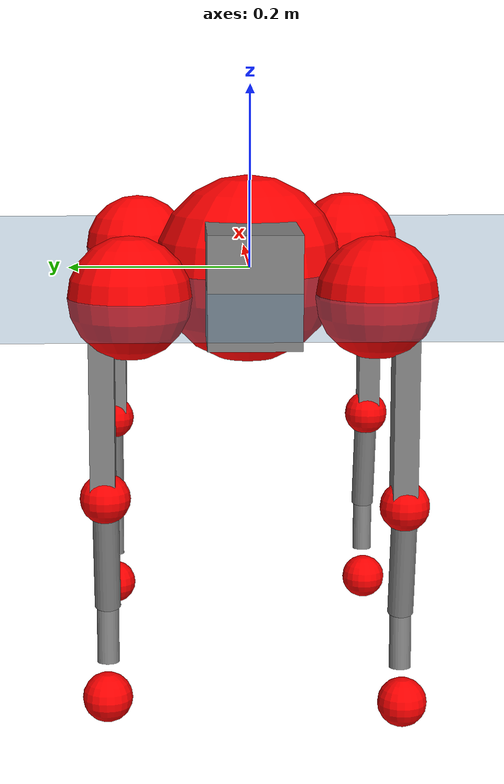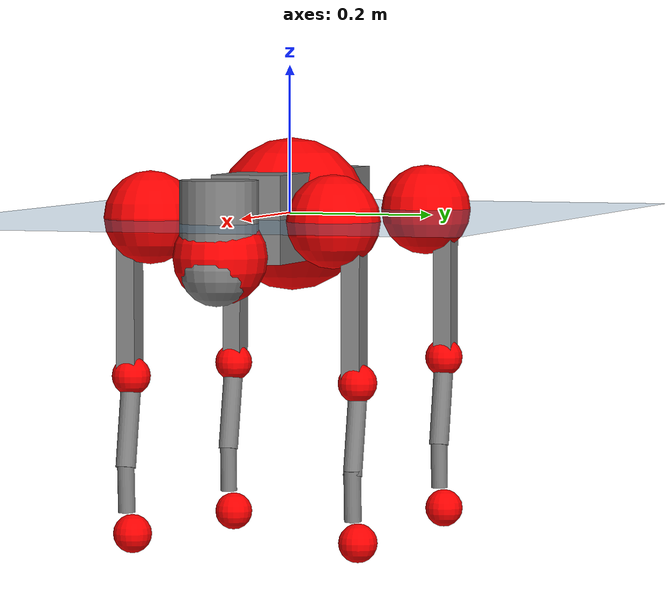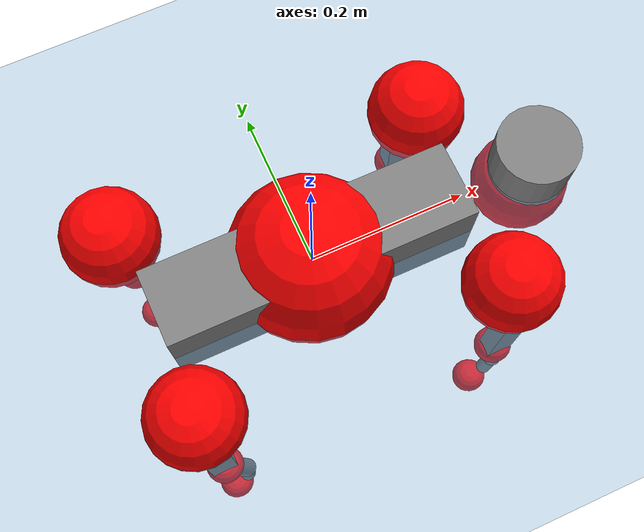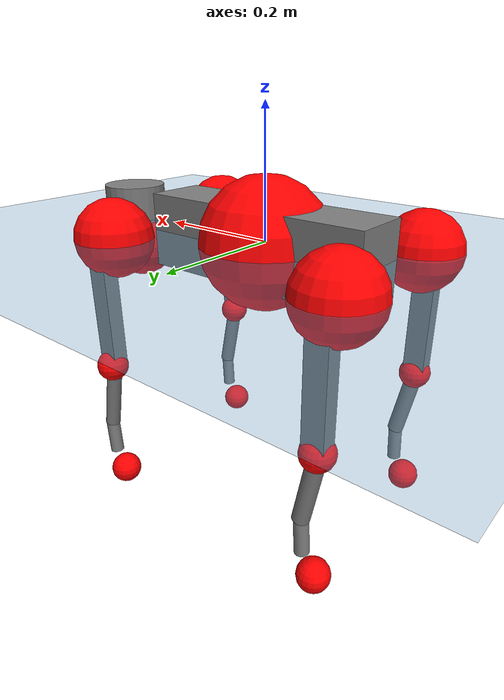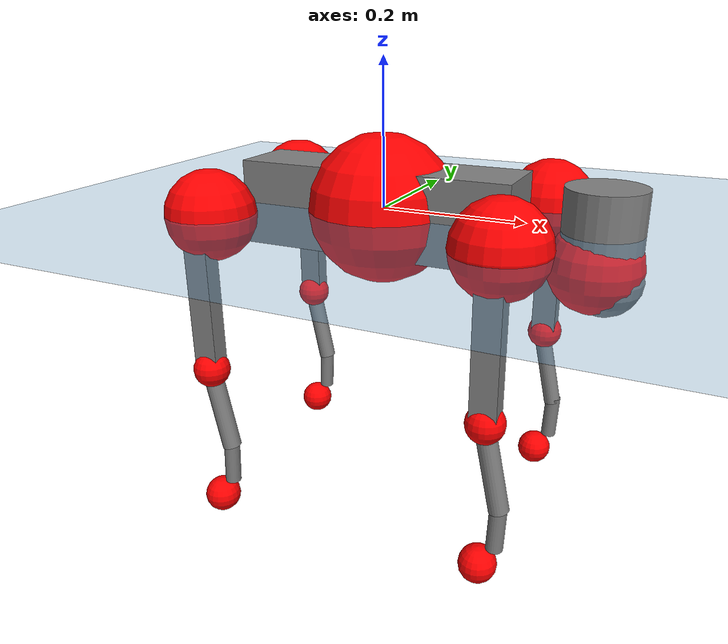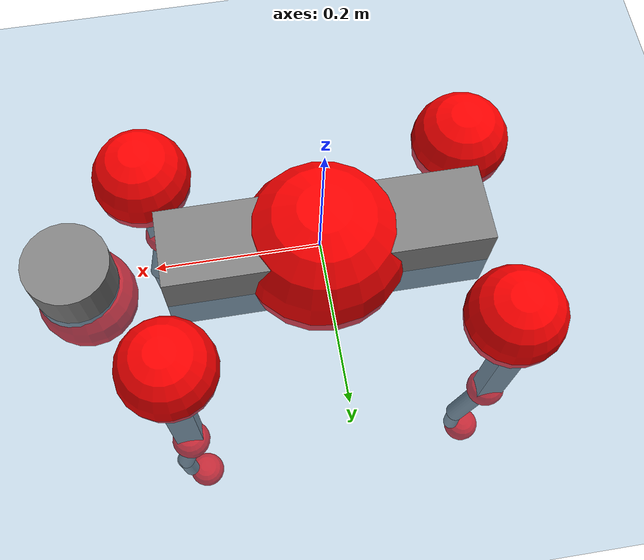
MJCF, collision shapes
<mujoco model="go2">
  <compiler angle="radian" assetdir="assets" balanceinertia="true" inertiafromgeom="false"/>

  <option timestep="0.005" density="1.2" viscosity="2e-05"/>

  <size nkey="1"/>

  <visual>
    <quality shadowsize="8192"/>
    <map shadowclip="0.5"/>
  </visual>

  <default>
    <default class="/">
      <geom contype="0" conaffinity="0" group="1" solref="-1000 -80"/>
      <site size="0.01 0.005 0.005" group="5"/>
      <general forcelimited="true" biastype="affine" gainprm="20" biasprm="0 -20 -0.5"/>
      <default class="go2">
        <joint armature="0.01" damping="0.01" frictionloss="0.2"/>
        <geom condim="1" margin="0.001"/>
        <default class="visual">
          <geom type="mesh" group="2"/>
        </default>
        <default class="collision">
          <geom group="3"/>
          <default class="foot">
            <geom size="0.022 0 0" condim="6" priority="1" friction="0.8 0.02 0.01" solimp="0.015 1 0.022"/>
          </default>
        </default>
        <default class="reward_collision_sphere">
          <geom group="5" rgba="1 0 0 1"/>
        </default>
      </default>
    </default>
  </default>

  <asset>
    <texture type="skybox" colorspace="auto" name="//unnamed_texture_0" builtin="gradient" rgb1="0.95 0.95 0.95" rgb2="0.95 0.95 0.95" width="100" height="600"/>
    <texture type="2d" colorspace="auto" name="texplane" builtin="checker" rgb1="0.345 0.575 0.748" rgb2="0.345 0.575 0.748" markrgb="1 1 1" width="512" height="512"/>
    <material name="MatPlane" class="/" texture="texplane" texuniform="true" texrepeat="2 2" specular="0.9"/>
    <material name="metal" class="/" rgba="0.9 0.95 0.95 1"/>
    <material name="black" class="/" rgba="0 0 0 1"/>
    <material name="white" class="/"/>
    <material name="gray" class="/" rgba="0.671705 0.692426 0.77427 1"/>
    <mesh name="base_0" class="/" file="base_0.obj"/>
    <mesh name="base_1" class="/" file="base_1.obj"/>
    <mesh name="base_2" class="/" file="base_2.obj"/>
    <mesh name="base_3" class="/" file="base_3.obj"/>
    <mesh name="base_4" class="/" file="base_4.obj"/>
    <mesh name="hip_0" class="/" file="hip_0.obj"/>
    <mesh name="hip_1" class="/" file="hip_1.obj"/>
    <mesh name="thigh_0" class="/" file="thigh_0.obj"/>
    <mesh name="thigh_1" class="/" file="thigh_1.obj"/>
    <mesh name="thigh_mirror_0" class="/" file="thigh_mirror_0.obj"/>
    <mesh name="thigh_mirror_1" class="/" file="thigh_mirror_1.obj"/>
    <mesh name="calf_0" class="/" file="calf_0.obj"/>
    <mesh name="calf_1" class="/" file="calf_1.obj"/>
    <mesh name="calf_mirror_0" class="/" file="calf_mirror_0.obj"/>
    <mesh name="calf_mirror_1" class="/" file="calf_mirror_1.obj"/>
    <mesh name="foot" class="/" file="foot.obj"/>
  </asset>

  <worldbody>
    <geom name="floor" class="/" size="100 100 0.125" type="plane" group="0" material="MatPlane"/>
    <light name="toplight_shadow" class="/" pos="0 0 5" dir="0.0990148 0.0990148 -0.990148" type="directional" ambient="0.04 0.04 0.04" diffuse="0.55 0.55 0.55" specular="0.12 0.12 0.12"/>
    <light name="toplight_fill" class="/" pos="0 0 5" dir="0.0990148 0.0990148 -0.990148" type="directional" castshadow="false" ambient="0.04 0.04 0.04" diffuse="0.3 0.3 0.3" specular="0.08 0.08 0.08"/>
    <body name="trunk" childclass="go2" pos="-0.00275413 0.00210807 -0.000978885" quat="0.999999 0.00012523 0.000139148 0.00124201">
      <inertial pos="0.022577 -0.00153115 -0.00544077" quat="-0.00502591 0.715044 0.000708854 0.699061" mass="7.85362" diaginertia="0.130441 0.129818 0.022835"/>
      <joint name="//unnamed_joint_0" type="free" armature="0" damping="0" frictionloss="0"/>
      <geom name="//unnamed_geom_1" class="visual" material="black" mesh="base_0"/>
      <geom name="//unnamed_geom_2" class="visual" material="black" mesh="base_1"/>
      <geom name="//unnamed_geom_3" class="visual" material="black" mesh="base_2"/>
      <geom name="//unnamed_geom_4" class="visual" material="white" mesh="base_3"/>
      <geom name="//unnamed_geom_5" class="visual" material="gray" mesh="base_4"/>
      <geom name="trunk_1" class="collision" size="0.194566 0.048357 0.0589593" type="box"/>
      <geom name="trunk_2" class="collision" size="0.0517187 0.0465468" pos="0.300007 0 0.00988465" type="cylinder"/>
      <geom name="trunk_3" class="collision" size="0.0486155" pos="0.308428 0 -0.0593079"/>
      <geom name="//unnamed_geom_9" class="reward_collision_sphere" size="0.103437"/>
      <geom name="//unnamed_geom_10" class="reward_collision_sphere" size="0.0620624" pos="0.294744 0 -0.0444809"/>
      <site name="imu" pos="-0.0143551 -0.0097969 0.0623654" size="0.0103437"/>
      <camera name="track" pos="0 -2.124 0" quat="0.707107 0.707107 0 0" mode="trackcom"/>
      <camera name="ego_camera" pos="0.328429 0 0.0444809" quat="-0.5 -0.5 0.5 0.5"/>
      <body name="FL_hip" pos="0.204038 0.0508682 8.42309e-05" quat="0.999999 -0.000611932 8.75281e-05 0.000900728">
        <inertial pos="-0.00218499 0.000281383 -2.35245e-05" quat="0.494559 0.499012 0.504895 0.501477" mass="0.72618" diaginertia="0.00110619 0.000809748 0.000442171"/>
        <joint name="FL_hip_joint" pos="0 0 0" axis="0.999622 0.0223188 0.0160373" stiffness="0.0204166" range="-1.06984 1.04537" armature="0.012434" damping="0.0166545" frictionloss="0.222117"/>
        <geom name="//unnamed_geom_11" class="visual" material="metal" mesh="hip_0"/>
        <geom name="//unnamed_geom_12" class="visual" material="gray" mesh="hip_1"/>
        <geom name="//unnamed_geom_13" class="collision" size="0.0475812 0.0206875" pos="0 0.0849599 0" quat="0.707107 0.707107 0 0" type="cylinder"/>
        <geom name="//unnamed_geom_14" class="reward_collision_sphere" size="0.0620624" pos="0 0.0743399 0"/>
        <body name="FL_thigh" pos="-0.000319731 0.102671 -7.49769e-05" quat="1 0.000490134 0.000394187 -0.000597385">
          <inertial pos="-0.00537816 -0.0238829 -0.0277408" quat="0.832588 0.0786015 -0.0179859 0.547992" mass="1.24479" diaginertia="0.00745027 0.00768319 0.000806641"/>
          <joint name="FL_thigh_joint" pos="0 0 0" axis="0.00194804 0.99999 0.00393932" stiffness="0.00255593" range="-1.53166 3.48769" armature="0.00932222" damping="0.00214855" frictionloss="0.198675"/>
          <geom name="//unnamed_geom_15" class="visual" material="metal" mesh="thigh_0"/>
          <geom name="//unnamed_geom_16" class="visual" material="gray" mesh="thigh_1"/>
          <geom name="//unnamed_geom_17" class="collision" size="0.110161 0.0126711 0.0175843" pos="0 0 -0.105272" quat="0.707107 0 0.707107 0" type="box"/>
          <body name="FL_calf" pos="-0.000173552 0.00472365 -0.211524" quat="1 -0.000137164 9.04313e-05 -0.000120119">
            <inertial pos="0.00803263 -0.00296237 -0.139666" quat="0.713112 -0.00956 0.0088128 0.700929" mass="0.27072" diaginertia="0.00196321 0.00197057 5.17524e-05"/>
            <joint name="FL_calf_joint" pos="0 0 0" axis="-0.00485668 0.999983 0.00337138" stiffness="0.0117852" range="-2.73521 -0.877925" armature="0.00984745" damping="0.0105149" frictionloss="0.221661"/>
            <geom name="//unnamed_geom_18" class="visual" material="gray" mesh="calf_0"/>
            <geom name="//unnamed_geom_19" class="visual" material="black" mesh="calf_1"/>
            <geom name="FL_calf0" class="collision" size="0.0124125 0.0620624" pos="0.00842125 0 -0.0593079" quat="0.994493 0 -0.104807 0" type="cylinder"/>
            <geom name="//unnamed_geom_21" class="collision" size="0.0113781 0.0336171" pos="0.0210531 0 -0.146293" quat="0.999688 0 0.0249974 0" type="cylinder"/>
            <geom name="//unnamed_geom_22" class="visual" pos="0 0 -0.210543" quat="1 0 0 0" material="black" mesh="foot"/>
            <geom name="FL_foot" class="foot" size="0.0217724" pos="-0.00210531 0 -0.210543"/>
            <geom name="//unnamed_geom_24" class="reward_collision_sphere" size="0.0258593"/>
            <geom name="//unnamed_geom_25" class="reward_collision_sphere" size="0.0258593" pos="-0.00210531 0 -0.210543"/>
            <site name="FL_foot" class="foot" pos="-0.00210531 0 -0.210543" size="0.0103437"/>
          </body>
        </body>
      </body>
      <body name="FR_hip" pos="0.208212 -0.0539544 0.00250774" quat="1 0.000223094 0.000190117 -0.000535589">
        <inertial pos="-0.0100756 0.000465659 0.0038524" quat="0.496604 0.506935 0.498845 0.497549" mass="0.732283" diaginertia="0.00107807 0.000765908 0.000429125"/>
        <joint name="FR_hip_joint" pos="0 0 0" axis="0.999914 -0.0101332 -0.00826757" stiffness="0.012137" range="-0.979244 1.08172" armature="0.00993373" damping="0.00362448" frictionloss="0.226794"/>
        <geom name="//unnamed_geom_26" class="visual" pos="0 6.40593e-10 2.74764e-08" quat="4.63268e-05 1 0 0" material="metal" mesh="hip_0"/>
        <geom name="//unnamed_geom_27" class="visual" pos="0 1.03848e-09 -6.79596e-08" quat="4.63268e-05 1 0 0" material="gray" mesh="hip_1"/>
        <geom name="//unnamed_geom_28" class="collision" size="0.0475812 0.0206875" pos="0 -0.0849599 0" quat="0.707107 0.707107 0 0" type="cylinder"/>
        <geom name="//unnamed_geom_29" class="reward_collision_sphere" size="0.0620624" pos="0 -0.0743399 0"/>
        <body name="FR_thigh" pos="0.0012401 -0.103839 0.000820692" quat="1 8.14627e-06 6.72695e-06 2.31949e-05">
          <inertial pos="-0.00523654 0.0183065 -0.0298168" quat="0.551427 -0.0203453 0.0850246 0.82963" mass="1.31434" diaginertia="0.0076702 0.00834677 0.000852433"/>
          <joint name="FR_thigh_joint" pos="0 0 0" axis="0.000135009 -0.999993 0.0036764" stiffness="0.00903534" range="-3.52859 1.5989" armature="0.00893354" damping="0.0182235" frictionloss="0.231746"/>
          <geom name="//unnamed_geom_30" class="visual" material="metal" mesh="thigh_mirror_0"/>
          <geom name="//unnamed_geom_31" class="visual" material="gray" mesh="thigh_mirror_1"/>
          <geom name="//unnamed_geom_32" class="collision" size="0.110161 0.0126711 0.0175843" pos="0 0 -0.105272" quat="0.707107 0 0.707107 0" type="box"/>
          <body name="FR_calf" pos="-0.000198255 0.00202442 -0.212319" quat="0.999998 0.00140989 -0.00155488 0.000760103">
            <inertial pos="0.00106762 0.000518924 -0.141658" quat="0.697775 0.00375367 0.0014024 0.716306" mass="0.266477" diaginertia="0.00190584 0.00187108 4.61044e-05"/>
            <joint name="FR_calf_joint" pos="0 0 0" axis="-0.00326318 -0.999966 0.00758083" range="0.913025 2.70506" armature="0.0114409" damping="0" frictionloss="0.18064"/>
            <geom name="//unnamed_geom_33" class="visual" material="gray" mesh="calf_mirror_0"/>
            <geom name="//unnamed_geom_34" class="visual" material="black" mesh="calf_mirror_1"/>
            <geom name="FR_calf0" class="collision" size="0.0134469 0.0620624" pos="0.0105266 0 -0.0593079" quat="0.995004 0 -0.0998334 0" type="cylinder"/>
            <geom name="//unnamed_geom_36" class="collision" size="0.0113781 0.0336171" pos="0.0210531 0 -0.146293" quat="0.999688 0 0.0249974 0" type="cylinder"/>
            <geom name="//unnamed_geom_37" class="visual" pos="0 0 -0.210543" quat="1 0 0 0" material="black" mesh="foot"/>
            <geom name="FR_foot" class="foot" size="0.0205462" pos="-0.00210531 0 -0.210543"/>
            <geom name="//unnamed_geom_39" class="reward_collision_sphere" size="0.0258593"/>
            <geom name="//unnamed_geom_40" class="reward_collision_sphere" size="0.0258593" pos="-0.00210531 0 -0.210543"/>
            <site name="FR_foot" class="foot" pos="-0.00210531 0 -0.210543" size="0.0103437"/>
          </body>
        </body>
      </body>
      <body name="RL_hip" pos="-0.209476 0.0512548 -0.00132219" quat="1 -5.28243e-05 -0.000766675 4.75639e-05">
        <inertial pos="0.00194343 0.00720817 -0.000913851" quat="0.504885 0.495207 0.490771 0.508926" mass="0.743823" diaginertia="0.00111798 0.000812303 0.000470083"/>
        <joint name="RL_hip_joint" pos="0 0 0" axis="-0.999968 -0.0080481 -0.000307053" range="-1.05331 1.09091" armature="0.0102624" damping="0" frictionloss="0.182777"/>
        <geom name="//unnamed_geom_41" class="visual" pos="-5.59201e-10 0 -1.09616e-07" quat="4.63268e-05 0 1 0" material="metal" mesh="hip_0"/>
        <geom name="//unnamed_geom_42" class="visual" pos="-9.06532e-10 0 -9.7214e-08" quat="4.63268e-05 0 1 0" material="gray" mesh="hip_1"/>
        <geom name="//unnamed_geom_43" class="collision" size="0.0475812 0.0206875" pos="0 0.0849599 0" quat="0.707107 0.707107 0 0" type="cylinder"/>
        <geom name="//unnamed_geom_44" class="reward_collision_sphere" size="0.0620624" pos="0 0.0743399 0"/>
        <body name="RL_thigh" pos="0.000846562 0.102931 0.00112731" quat="0.999999 0.000119698 0.000756838 -0.000823567">
          <inertial pos="-0.00155012 -0.0277934 -0.0318216" quat="0.82899 0.0817216 -0.0247973 0.552704" mass="1.30416" diaginertia="0.00764563 0.00790509 0.000873579"/>
          <joint name="RL_thigh_joint" pos="0 0 0" axis="0.013222 0.999895 -0.00600274" stiffness="0.00995816" range="-0.528564 4.54832" armature="0.00851706" damping="0.0137923" frictionloss="0.186085"/>
          <geom name="//unnamed_geom_45" class="visual" material="metal" mesh="thigh_0"/>
          <geom name="//unnamed_geom_46" class="visual" material="gray" mesh="thigh_1"/>
          <geom name="//unnamed_geom_47" class="collision" size="0.110161 0.0126711 0.0175843" pos="0 0 -0.105272" quat="0.707107 0 0.707107 0" type="box"/>
          <body name="RL_calf" pos="2.0803e-05 -0.00203589 -0.206123" quat="0.999997 -0.000756519 0.000783178 -0.00221377">
            <inertial pos="0.00780625 -0.000619026 -0.145443" quat="0.70985 0.00464233 -0.000431614 0.704338" mass="0.274615" diaginertia="0.00191094 0.00191448 4.95037e-05"/>
            <joint name="RL_calf_joint" pos="0 0 0" axis="-0.00263002 0.999906 0.0134632" range="-2.67653 -0.838918" armature="0.0116199" damping="0" frictionloss="0.219939"/>
            <geom name="//unnamed_geom_48" class="visual" material="gray" mesh="calf_0"/>
            <geom name="//unnamed_geom_49" class="visual" material="black" mesh="calf_1"/>
            <geom name="RL_calf0" class="collision" size="0.0134469 0.0620624" pos="0.0105266 0 -0.0593079" quat="0.995004 0 -0.0998334 0" type="cylinder"/>
            <geom name="//unnamed_geom_51" class="collision" size="0.0113781 0.0336171" pos="0.0210531 0 -0.146293" quat="0.999688 0 0.0249974 0" type="cylinder"/>
            <geom name="//unnamed_geom_52" class="visual" pos="0 0 -0.210543" quat="1 0 0 0" material="black" mesh="foot"/>
            <geom name="RL_foot" class="foot" size="0.0242549" pos="-0.00210531 0 -0.210543"/>
            <geom name="//unnamed_geom_54" class="reward_collision_sphere" size="0.0258593"/>
            <geom name="//unnamed_geom_55" class="reward_collision_sphere" size="0.0258593" pos="-0.00210531 0 -0.210543"/>
            <site name="RL_foot" class="foot" pos="-0.00210531 0 -0.210543" size="0.0103437"/>
          </body>
        </body>
      </body>
      <body name="RR_hip" pos="-0.199308 -0.0472704 -0.00302875" quat="0.999999 -0.000712144 -0.000892741 0.000263209">
        <inertial pos="0.00513148 -0.00079128 -0.000866157" quat="0.501802 0.480496 0.501743 0.515337" mass="0.732311" diaginertia="0.00112036 0.000782579 0.000441766"/>
        <joint name="RR_hip_joint" pos="0 0 0" axis="-0.999764 0.0206062 0.00695098" range="-1.04737 1.09811" armature="0.00925371" damping="0.0154622" frictionloss="0.202357"/>
        <geom name="//unnamed_geom_56" class="visual" pos="5.59524e-10 6.40593e-10 -1.37093e-07" quat="2.14617e-09 4.63268e-05 4.63268e-05 -1" material="metal" mesh="hip_0"/>
        <geom name="//unnamed_geom_57" class="visual" pos="9.05731e-10 1.03848e-09 -2.92544e-08" quat="2.14617e-09 4.63268e-05 4.63268e-05 -1" material="gray" mesh="hip_1"/>
        <geom name="//unnamed_geom_58" class="collision" size="0.0475812 0.0206875" pos="0 -0.0849599 0" quat="0.707107 0.707107 0 0" type="cylinder"/>
        <geom name="//unnamed_geom_59" class="reward_collision_sphere" size="0.0620624" pos="0 -0.0743399 0"/>
        <body name="RR_thigh" pos="-0.000393423 -0.104075 -0.00344183" quat="0.999999 -0.000961578 -0.000203871 0.000605194">
          <inertial pos="-0.0012738 0.0229725 -0.0299407" quat="0.547874 -0.000455835 0.0701246 0.833616" mass="1.22402" diaginertia="0.00759631 0.00764236 0.000769101"/>
          <joint name="RR_thigh_joint" pos="0 0 0" axis="0.0154351 -0.999829 0.0102242" stiffness="0.00255773" range="-4.55349 0.569149" armature="0.00942045" damping="0.0212818" frictionloss="0.192513"/>
          <geom name="//unnamed_geom_60" class="visual" material="metal" mesh="thigh_mirror_0"/>
          <geom name="//unnamed_geom_61" class="visual" material="gray" mesh="thigh_mirror_1"/>
          <geom name="//unnamed_geom_62" class="collision" size="0.110161 0.0126711 0.0175843" pos="0 0 -0.105272" quat="0.707107 0 0.707107 0" type="box"/>
          <body name="RR_calf" pos="0.00131224 -0.00145142 -0.213364" quat="1 3.11232e-05 5.97131e-05 3.18403e-05">
            <inertial pos="0.00920675 0.00514559 -0.143585" quat="0.703084 -0.00808639 0.0010895 0.71106" mass="0.255683" diaginertia="0.001893 0.00188602 4.89882e-05"/>
            <joint name="RR_calf_joint" pos="0 0 0" axis="-0.000421353 -1 -7.16122e-05" range="0.792512 2.64844" armature="0.0104558" damping="0.021387" frictionloss="0.166079"/>
            <geom name="//unnamed_geom_63" class="visual" material="gray" mesh="calf_mirror_0"/>
            <geom name="//unnamed_geom_64" class="visual" material="black" mesh="calf_mirror_1"/>
            <geom name="RR_calf0" class="collision" size="0.0134469 0.0620624" pos="0.0105266 0 -0.0593079" quat="0.995004 0 -0.0998334 0" type="cylinder"/>
            <geom name="//unnamed_geom_66" class="collision" size="0.0113781 0.0336171" pos="0.0210531 0 -0.146293" quat="0.999688 0 0.0249974 0" type="cylinder"/>
            <geom name="//unnamed_geom_67" class="visual" pos="0 0 -0.210543" quat="1 0 0 0" material="black" mesh="foot"/>
            <geom name="RR_foot" class="foot" size="0.0191333" pos="-0.00210531 0 -0.210543"/>
            <geom name="//unnamed_geom_69" class="reward_collision_sphere" size="0.0258593"/>
            <geom name="//unnamed_geom_70" class="reward_collision_sphere" size="0.0258593" pos="-0.00210531 0 -0.210543"/>
            <site name="RR_foot" class="foot" pos="-0.00210531 0 -0.210543" size="0.0103437"/>
          </body>
        </body>
      </body>
    </body>
  </worldbody>

  <contact>
    <pair class="/" geom1="floor" geom2="FL_foot" name="//unnamed_contact_0"/>
    <pair class="/" geom1="floor" geom2="FR_foot" name="//unnamed_contact_1"/>
    <pair class="/" geom1="floor" geom2="RL_foot" name="//unnamed_contact_2"/>
    <pair class="/" geom1="floor" geom2="RR_foot" name="//unnamed_contact_3"/>
  </contact>

  <actuator>
    <general name="FL_hip" class="/" joint="FL_hip_joint" forcerange="-24.2717 24.2717" gainprm="20.4955" biasprm="0 -20.4955 -0.5489"/>
    <general name="FL_thigh" class="/" joint="FL_thigh_joint" forcerange="-26.3501 26.3501" gainprm="20.4955" biasprm="0 -20.4955 -0.5489"/>
    <general name="FL_calf" class="/" joint="FL_calf_joint" forcerange="-50.0261 50.0261" gainprm="20.4955" biasprm="0 -20.4955 -0.5489"/>
    <general name="FR_hip" class="/" joint="FR_hip_joint" forcerange="-24.8122 24.8122" gainprm="20.4955" biasprm="0 -20.4955 -0.5489"/>
    <general name="FR_thigh" class="/" joint="FR_thigh_joint" forcerange="-25.954 25.954" gainprm="20.4955" biasprm="0 -20.4955 -0.5489"/>
    <general name="FR_calf" class="/" joint="FR_calf_joint" forcerange="-47.167 47.167" gainprm="20.4955" biasprm="0 -20.4955 -0.5489"/>
    <general name="RL_hip" class="/" joint="RL_hip_joint" forcerange="-24.7585 24.7585" gainprm="20.4955" biasprm="0 -20.4955 -0.5489"/>
    <general name="RL_thigh" class="/" joint="RL_thigh_joint" forcerange="-24.8069 24.8069" gainprm="20.4955" biasprm="0 -20.4955 -0.5489"/>
    <general name="RL_calf" class="/" joint="RL_calf_joint" forcerange="-45.052 45.052" gainprm="20.4955" biasprm="0 -20.4955 -0.5489"/>
    <general name="RR_hip" class="/" joint="RR_hip_joint" forcerange="-23.8656 23.8656" gainprm="20.4955" biasprm="0 -20.4955 -0.5489"/>
    <general name="RR_thigh" class="/" joint="RR_thigh_joint" forcerange="-26.7531 26.7531" gainprm="20.4955" biasprm="0 -20.4955 -0.5489"/>
    <general name="RR_calf" class="/" joint="RR_calf_joint" forcerange="-55.7354 55.7354" gainprm="20.4955" biasprm="0 -20.4955 -0.5489"/>
  </actuator>

  <sensor>
    <gyro site="imu" name="imu_angular_velocity"/>
    <velocimeter site="imu" name="imu_linear_velocity"/>
    <framelinvel objtype="site" objname="FL_foot" name="FL_foot_global_linear_velocity"/>
    <framelinvel objtype="site" objname="FR_foot" name="FR_foot_global_linear_velocity"/>
    <framelinvel objtype="site" objname="RL_foot" name="RL_foot_global_linear_velocity"/>
    <framelinvel objtype="site" objname="RR_foot" name="RR_foot_global_linear_velocity"/>
  </sensor>

  <keyframe>
    <key name="home" qpos="0 0 0.325 1 0 0 0 0.1 0.8 -1.5 -0.1 -0.8 1.5 -0.1 0.8 -1.5 0.1 -0.8 1.5"/>
  </keyframe>
</mujoco>
